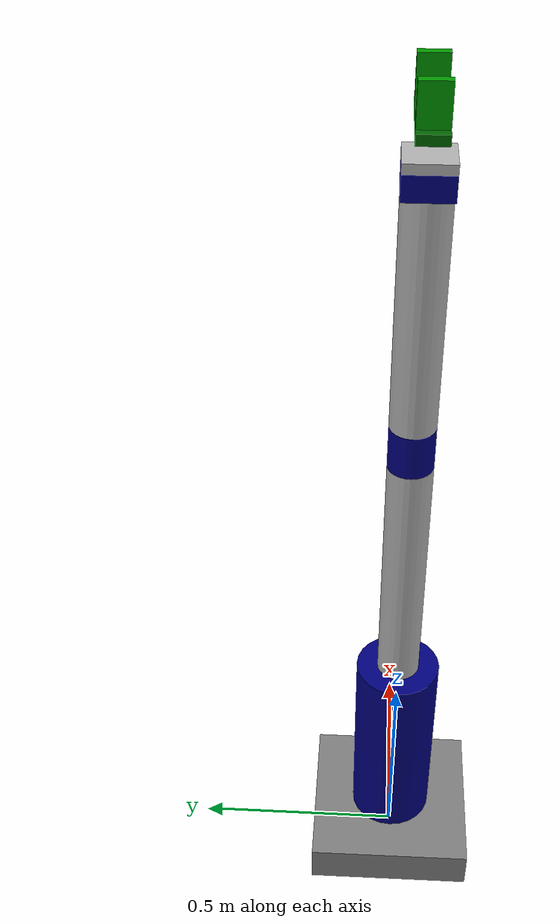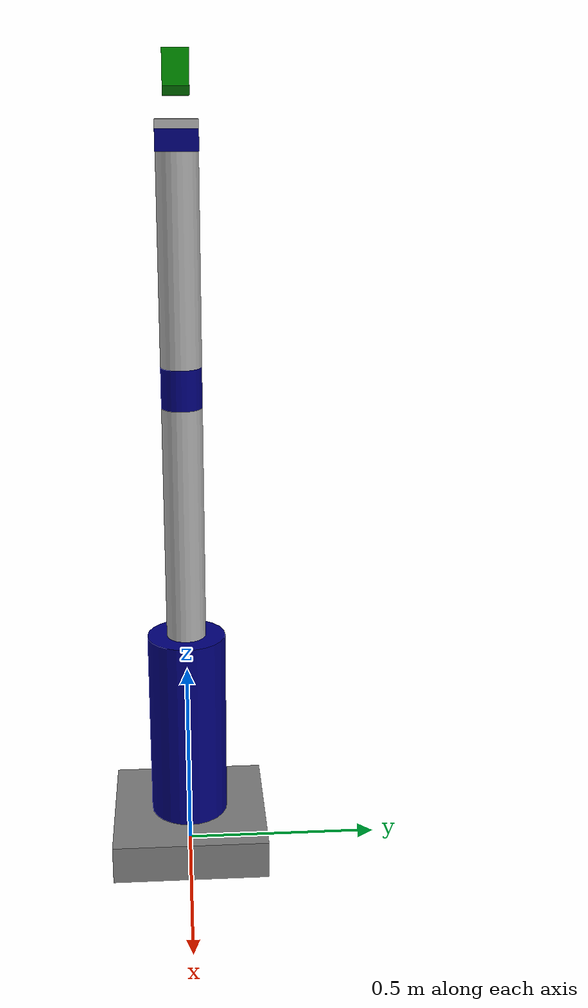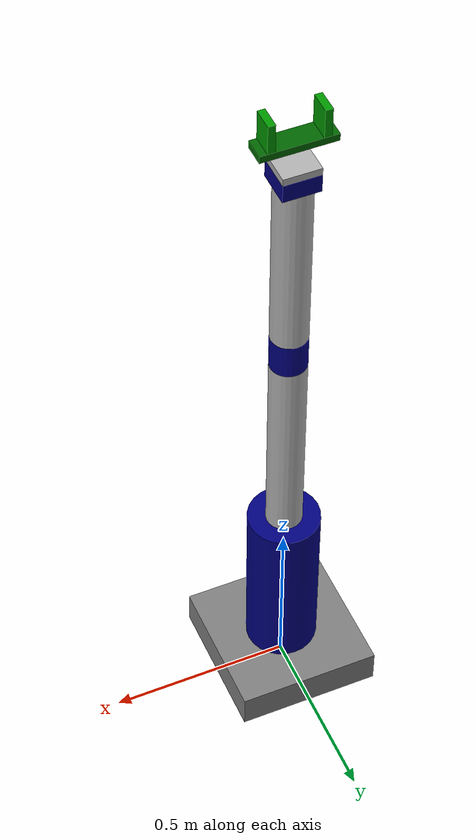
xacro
<?xml version="1.0"?>
<robot xmlns:xacro="http://www.ros.org/wiki/xacro" name="arm2arm">
    <xacro:arg name="initial_positions_file" default="initial_positions.yaml" />

    <!-- Import arm2arm urdf file -->
    <xacro:include filename="$(find my_robot_description)/urdf/arm2arm.urdf.xacro" />

    <!-- Import control_xacro -->
    <xacro:include filename="arm2arm.ros2_control.xacro" />

    <xacro:arm2arm_ros2_control name="FakeSystem" initial_positions_file="$(arg initial_positions_file)"/>

</robot>

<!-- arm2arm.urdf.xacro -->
<robot name="arm2arm" xmlns:xacro="https://www.ros.org/wiki/xacro">

    <xacro:include filename="arm.xacro"/>
    <xacro:include filename="common_properties.xacro"/>
    <xacro:include filename="gripper.xacro"/>
    <xacro:include filename="arm2arm.ros2_control.xacro"/>

    <joint name="gripper_base_joint" type="fixed">
        <parent link="tool_link"/>
        <child link="gripper_base_link"/>
        <origin xyz="0 0 0.05" rpy="0 0 0"/>

    </joint>

</robot>

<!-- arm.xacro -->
<robot xmlns:xacro="https://www.ros.org/wiki/xacro">

    <link name="base_link">
        <visual>
            <geometry>
                <box size="0.4 0.4 0.1"/>
            </geometry>
            <origin xyz="0.0 0.0 0.05" rpy="0.0 0.0 0.0"/>
            <material name="grey" />
        </visual>
        <collision>
            <geometry>
                <box size="0.4 0.4 0.1"/>
            </geometry>
            <origin xyz="0.0 0.0 0.05" rpy="0.0 0.0 0.0"/>
        </collision>

    </link>

    <link name="shoulder_link">
        <visual>
            <geometry>
                <cylinder radius="0.1" length="0.5"/>
            </geometry>
            <origin xyz="0 0 0.25" rpy="0 0 0" />
            <material name="blue" />
        </visual>
        <collision>
            <geometry>
                <cylinder radius="0.1" length="0.5"/>
            </geometry>
            <origin xyz="0 0 0.25" rpy="0 0 0" />
        </collision>
    </link>

    <link name="arm_link">
        <visual>
            <geometry>
                <cylinder radius="0.05" length="0.6"/>
            </geometry>
            <origin xyz="0 0 0.3" rpy="0 0 0" />
            <material name="silver" />
        </visual>
        <collision>
            <geometry>
                <cylinder radius="0.05" length="0.6"/>
            </geometry>
            <origin xyz="0 0 0.3" rpy="0 0 0" />
        </collision>
    </link>

    <link name="elbow_link">
        <visual>
            <geometry>
                <cylinder radius="0.05" length="0.1"/>
            </geometry>
            <origin xyz="0 0 0.05" rpy="0 0 0" />
            <material name="blue" />
        </visual>
        <collision>
            <geometry>
                <cylinder radius="0.05" length="0.1"/>
            </geometry>
            <origin xyz="0 0 0.05" rpy="0 0 0" />
        </collision>
    </link>

    <link name="forearm_link">
        <visual>
            <geometry>
                <cylinder radius="0.05" length="0.5"/>
            </geometry>
            <origin xyz="0 0 0.25" rpy="0 0 0" />
            <material name="silver" />
        </visual>
        <collision>
            <geometry>
                <cylinder radius="0.05" length="0.5"/>
            </geometry>
            <origin xyz="0 0 0.25" rpy="0 0 0" />
        </collision>
    </link>

    <link name="wrist_link">
        <visual>
            <geometry>
                <box size="0.1 0.1 0.05"/>
            </geometry>
            <origin xyz="0.0 0.0 0.025" rpy="0.0 0.0 0.0"/>
            <material name="blue" />
        </visual>
        <collision>
            <geometry>
                <box size="0.1 0.1 0.05"/>
            </geometry>
            <origin xyz="0.0 0.0 0.025" rpy="0.0 0.0 0.0"/>
        </collision>
    </link>

    <link name="hand_link">
        <visual>
            <geometry>
                <box size="0.1 0.1 0.02"/>
            </geometry>
            <origin xyz="0.0 0.0 0.01" rpy="0.0 0.0 0.0"/>
            <material name="silver" />
        </visual>
        <collision>
            <geometry>
                <box size="0.1 0.1 0.02"/>
            </geometry>
            <origin xyz="0.0 0.0 0.01" rpy="0.0 0.0 0.0"/>
        </collision>
    </link>

    <link name="tool_link">

    </link>

    <joint name="joint_1" type="revolute">
        <parent link="base_link"/>
        <child link="shoulder_link"/>
        <origin xyz="0 0 0.1" rpy="0 0 0" />
        <axis xyz="0.0 0.0 1"/>
        <limit lower="-3.14" upper="3.14" effort="1000.0" velocity="1.0"/>
    </joint>

    <joint name="joint_2" type="revolute">
        <parent link="shoulder_link"/>
        <child link="arm_link"/>
        <origin xyz="0 0 0.5" rpy="0 0 0" />
        <axis xyz="0.0 1.0 0.0"/>
        <limit lower="0" upper="2.5" effort="1000.0" velocity="1.0"/>
    </joint>

    <joint name="joint_3" type="revolute">
        <parent link="arm_link"/>
        <child link="elbow_link"/>
        <origin xyz="0 0 0.6" rpy="0 0 0" />
        <axis xyz="0.0 1.0 0.0"/>
        <limit lower="0" upper="2.5" effort="1000.0" velocity="1.0"/>
    </joint>

    <joint name="joint_4" type="revolute">
        <parent link="elbow_link"/>
        <child link="forearm_link"/>
        <origin xyz="0 0 0.1" rpy="0 0 0" />
        <axis xyz="0.0 0.0 1.0"/>
        <limit lower="-3.14" upper="3.14" effort="1000.0" velocity="1.0"/>
    </joint>

    <joint name="joint_5" type="revolute">
        <parent link="forearm_link"/>
        <child link="wrist_link"/>
        <origin xyz="0 0 0.5" rpy="0 0 0" />
        <axis xyz="0.0 1.0 0.0"/>
        <limit lower="-1.57" upper="1.57" effort="1000.0" velocity="1.0"/>
    </joint>

    <joint name="joint_6" type="continuous">
        <parent link="wrist_link"/>
        <child link="hand_link"/>
        <origin xyz="0 0 0.05" rpy="0 0 0" />
        <axis xyz="0.0 0.0 0.1"/>
    </joint>

    <joint name="hand_tool_joint" type="fixed">
        <parent link="hand_link"/>
        <child link="tool_link"/>
        <origin xyz="0 0 0.02" rpy="0 0 0" />

    </joint>
</robot>

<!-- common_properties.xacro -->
<robot xmlns:xacro="https://www.ros.org/wiki/xacro">

    <material name="grey">
        <color rgba="0.5 0.5 0.5 1"/>
    </material>

    <material name="blue">
        <color rgba="0.0 0.0 0.5 1"/>
    </material>

    <material name="silver">
        <color rgba="0.7 0.7 0.7 1"/>
    </material>

    <material name="dark_green">
        <color rgba="0.0 0.4 0.0 1"/>
    </material>

    <material name="light_green">
        <color rgba="0.0 0.6 0.0 1"/>
    </material>

</robot>

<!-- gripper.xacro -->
<robot xmlns:xacro="https://www.ros.org/wiki/xacro">

    <link name="gripper_base_link">
        <visual>
            <geometry>
                <box size="0.2 0.06 0.02"/>
            </geometry>
            <material name="dark_green"/>
            <origin xyz="0.0 0.0 0.01" rpy="0.0 0.0 0.0"/>
        </visual>

        <collision>
            <geometry>
                <box size="0.2 0.06 0.02"/>
            </geometry>
            <origin xyz="0.0 0.0 0.01" rpy="0.0 0.0 0.0"/>
        </collision>
    </link>

    <link name="gripper_left_finger_link">
        <visual>
            <geometry>
                <box size="0.02 0.06 0.08"/>
            </geometry>
            <material name="light_green"/>
            <origin xyz="0 0 0.04" rpy="0 0 0"/>
        </visual>

        <collision>
            <geometry>
                <box size="0.02 0.06 0.08"/>
            </geometry>
            <origin xyz="0 0 0.04" rpy="0 0 0"/>
        </collision>
    </link>

    <link name="gripper_right_finger_link">
        <visual>
            <geometry>
                <box size="0.02 0.06 0.08"/>
            </geometry>
            <material name="light_green"/>
            <origin xyz="0 0 0.04" rpy="0 0 0"/>
        </visual>

        <collision>
            <geometry>
                <box size="0.02 0.06 0.08"/>
            </geometry>
            <origin xyz="0 0 0.04" rpy="0 0 0"/>
        </collision>
    </link>

    <joint name="gripper_left_finger_joint" type="prismatic">
        <parent link="gripper_base_link"/>
        <child link="gripper_left_finger_link"/>
        <origin xyz="-0.07 0.0 0.02" rpy="0.0 0.0 0.0"/>
        <axis xyz="1.0 0.0 0.0"/>
        <limit lower="0.0" upper="0.06" effort="1000.0" velocity="1.0"/>
    </joint>

    <joint name="gripper_right_finger_joint" type="prismatic">
        <parent link="gripper_base_link"/>
        <child link="gripper_right_finger_link"/>
        <origin xyz="0.07 0.0 0.02" rpy="0.0 0.0 0.0"/>
        <axis xyz="1.0 0.0 0.0"/>
        <mimic joint="gripper_left_finger_joint" multiplier="-1"/>
        <limit lower="-0.06" upper="0.0" effort="1000.0" velocity="1.0"/>
    </joint>
</robot>
